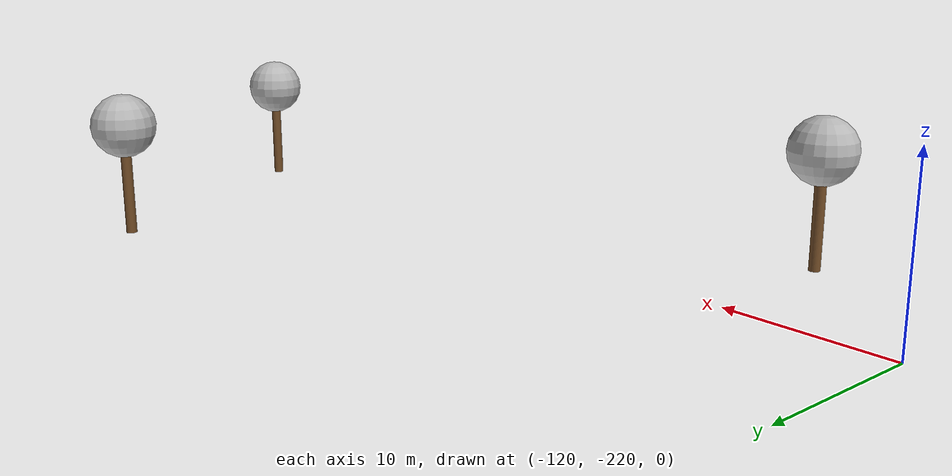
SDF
<sdf version="1.7">
 <world name="default">
  <model name="tree_simple_0_clone_0">
   <static>1</static>
   <link name="link">
    <pose>0 0 0.1 0 -0 0</pose>
    <inertial>
     <mass>666</mass>
     <inertia>
      <ixx>0.0861167</ixx>
      <ixy>0</ixy>
      <ixz>0</ixz>
      <iyy>0.0861167</iyy>
      <iyz>0</iyz>
      <izz>0.0861167</izz>
     </inertia>
    </inertial>
    <collision name="collision_trunk">
     <pose>0 0 2 0 -0 0</pose>
     <geometry><cylinder><radius>0.25</radius><length>4</length></cylinder></geometry>
     <surface>
      <contact>
       <poissons_ratio>0.347</poissons_ratio>
       <elastic_modulus>8.8e+09</elastic_modulus>
       <ode><kp>100000</kp><kd>100</kd><max_vel>100</max_vel><min_depth>0.001</min_depth></ode>
      </contact>
      <friction>
       <torsional>
        <coefficient>1</coefficient>
        <use_patch_radius>0</use_patch_radius>
        <surface_radius>0.01</surface_radius>
       </torsional>
      </friction>
     </surface>
    </collision>
    <collision name="collision_treetop">
     <pose>0 0 5.2 0 -0 0</pose>
     <geometry><sphere><radius>1.5</radius></sphere></geometry>
     <surface>
      <contact>
       <poissons_ratio>0.347</poissons_ratio>
       <elastic_modulus>8.8e+09</elastic_modulus>
       <ode><kp>100000</kp><kd>100</kd><max_vel>100</max_vel><min_depth>0.001</min_depth></ode>
      </contact>
      <friction>
       <torsional>
        <coefficient>1</coefficient>
        <use_patch_radius>0</use_patch_radius>
        <surface_radius>0.01</surface_radius>
       </torsional>
      </friction>
     </surface>
    </collision>
    <visual name="trunk">
     <pose>0 0 2 0 -0 0</pose>
     <geometry><cylinder><radius>0.25</radius><length>4</length></cylinder></geometry>
     <material>
      <script>
       <uri>model://tree_simple/scripts</uri>
       <uri>model://tree_simple/materials/textures</uri>
       <name>TreeSimple/Trunk</name>
      </script>
     </material>
    </visual>
    <visual name="treetop">
     <pose>0 0 5.2 0 -0 0</pose>
     <geometry><sphere><radius>1.5</radius></sphere></geometry>
     <material>
      <script>
       <uri>model://tree_simple/scripts</uri>
       <uri>model://tree_simple/materials/textures</uri>
       <name>TreeSimple/Treetop</name>
      </script>
     </material>
    </visual>
   </link>
   <pose>-93.0439 -195.793 4.71357 0 -0 0</pose>
  </model>
  <model name="tree_simple_0_clone_1">
   <static>1</static>
   <link name="link">
    <pose>0 0 0.1 0 -0 0</pose>
    <inertial>
     <mass>666</mass>
     <inertia>
      <ixx>0.0861167</ixx>
      <ixy>0</ixy>
      <ixz>0</ixz>
      <iyy>0.0861167</iyy>
      <iyz>0</iyz>
      <izz>0.0861167</izz>
     </inertia>
    </inertial>
    <collision name="collision_trunk">
     <pose>0 0 2 0 -0 0</pose>
     <geometry><cylinder><radius>0.25</radius><length>4</length></cylinder></geometry>
     <surface>
      <contact>
       <poissons_ratio>0.347</poissons_ratio>
       <elastic_modulus>8.8e+09</elastic_modulus>
       <ode><kp>100000</kp><kd>100</kd><max_vel>100</max_vel><min_depth>0.001</min_depth></ode>
      </contact>
      <friction>
       <torsional>
        <coefficient>1</coefficient>
        <use_patch_radius>0</use_patch_radius>
        <surface_radius>0.01</surface_radius>
       </torsional>
      </friction>
     </surface>
    </collision>
    <collision name="collision_treetop">
     <pose>0 0 5.2 0 -0 0</pose>
     <geometry><sphere><radius>1.5</radius></sphere></geometry>
     <surface>
      <contact>
       <poissons_ratio>0.347</poissons_ratio>
       <elastic_modulus>8.8e+09</elastic_modulus>
       <ode><kp>100000</kp><kd>100</kd><max_vel>100</max_vel><min_depth>0.001</min_depth></ode>
      </contact>
      <friction>
       <torsional>
        <coefficient>1</coefficient>
        <use_patch_radius>0</use_patch_radius>
        <surface_radius>0.01</surface_radius>
       </torsional>
      </friction>
     </surface>
    </collision>
    <visual name="trunk">
     <pose>0 0 2 0 -0 0</pose>
     <geometry><cylinder><radius>0.25</radius><length>4</length></cylinder></geometry>
     <material>
      <script>
       <uri>model://tree_simple/scripts</uri>
       <uri>model://tree_simple/materials/textures</uri>
       <name>TreeSimple/Trunk</name>
      </script>
     </material>
    </visual>
    <visual name="treetop">
     <pose>0 0 5.2 0 -0 0</pose>
     <geometry><sphere><radius>1.5</radius></sphere></geometry>
     <material>
      <script>
       <uri>model://tree_simple/scripts</uri>
       <uri>model://tree_simple/materials/textures</uri>
       <name>TreeSimple/Treetop</name>
      </script>
     </material>
    </visual>
   </link>
   <pose>-85.1171 -208.447 4.71357 0 -0 0</pose>
  </model>
  <model name="tree_simple_0_clone_1_clone_4">
   <static>1</static>
   <link name="link">
    <pose>0 0 0.1 0 -0 0</pose>
    <inertial>
     <mass>666</mass>
     <inertia>
      <ixx>0.0861167</ixx>
      <ixy>0</ixy>
      <ixz>0</ixz>
      <iyy>0.0861167</iyy>
      <iyz>0</iyz>
      <izz>0.0861167</izz>
     </inertia>
    </inertial>
    <collision name="collision_trunk">
     <pose>0 0 2 0 -0 0</pose>
     <geometry><cylinder><radius>0.25</radius><length>4</length></cylinder></geometry>
     <surface>
      <contact>
       <poissons_ratio>0.347</poissons_ratio>
       <elastic_modulus>8.8e+09</elastic_modulus>
       <ode><kp>100000</kp><kd>100</kd><max_vel>100</max_vel><min_depth>0.001</min_depth></ode>
      </contact>
      <friction>
       <torsional>
        <coefficient>1</coefficient>
        <use_patch_radius>0</use_patch_radius>
        <surface_radius>0.01</surface_radius>
       </torsional>
      </friction>
     </surface>
    </collision>
    <collision name="collision_treetop">
     <pose>0 0 5.2 0 -0 0</pose>
     <geometry><sphere><radius>1.5</radius></sphere></geometry>
     <surface>
      <contact>
       <poissons_ratio>0.347</poissons_ratio>
       <elastic_modulus>8.8e+09</elastic_modulus>
       <ode><kp>100000</kp><kd>100</kd><max_vel>100</max_vel><min_depth>0.001</min_depth></ode>
      </contact>
      <friction>
       <torsional>
        <coefficient>1</coefficient>
        <use_patch_radius>0</use_patch_radius>
        <surface_radius>0.01</surface_radius>
       </torsional>
      </friction>
     </surface>
    </collision>
    <visual name="trunk">
     <pose>0 0 2 0 -0 0</pose>
     <geometry><cylinder><radius>0.25</radius><length>4</length></cylinder></geometry>
     <material>
      <script>
       <uri>model://tree_simple/scripts</uri>
       <uri>model://tree_simple/materials/textures</uri>
       <name>TreeSimple/Trunk</name>
      </script>
     </material>
    </visual>
    <visual name="treetop">
     <pose>0 0 5.2 0 -0 0</pose>
     <geometry><sphere><radius>1.5</radius></sphere></geometry>
     <material>
      <script>
       <uri>model://tree_simple/scripts</uri>
       <uri>model://tree_simple/materials/textures</uri>
       <name>TreeSimple/Treetop</name>
      </script>
     </material>
    </visual>
   </link>
   <pose>-118 -215.45 4.71357 0 -0 0</pose>
  </model>
 </world>
</sdf>
